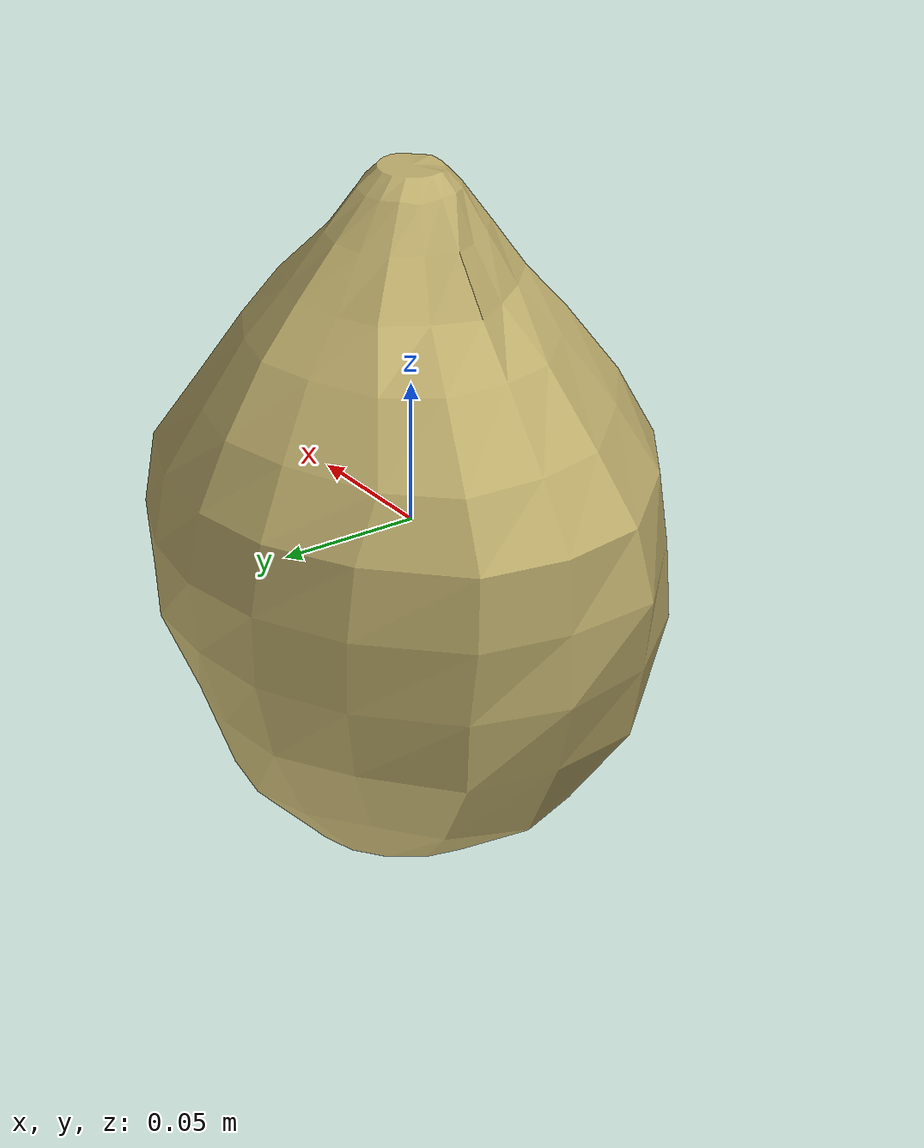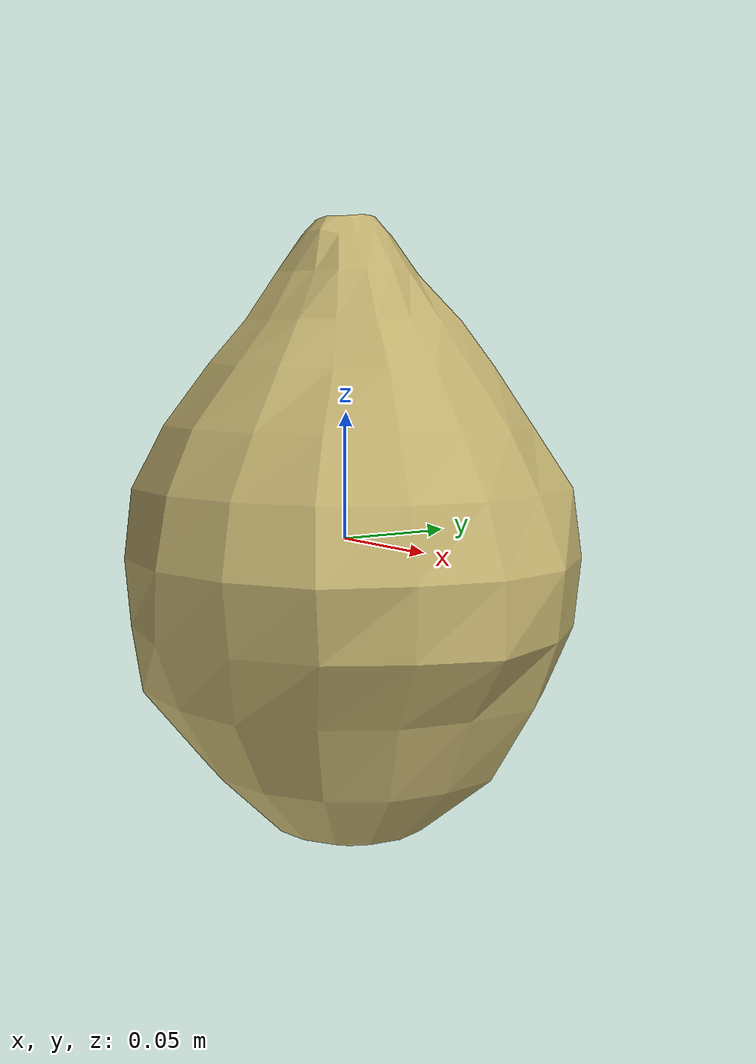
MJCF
<mujoco model="Lettuce_23">
  <compiler autolimits="true" boundmass="0.01" angle="radian"/>
  <default>
    <default class="/">
      <default class="__VISUAL_MJT__">
        <geom contype="0" conaffinity="0" group="0"/>
      </default>
      <default class="__STRUCTURAL_MJT__">
        <geom contype="8" conaffinity="15" group="4" friction="0.90000000000000002 0.90000000000000002 0.001" solref="0.025000000000000001 1" solimp="0.998 0.998 0.001"/>
      </default>
      <default class="__DYNAMIC_MJT__">
        <geom contype="1" conaffinity="15" group="4" friction="0.90000000000000002 0.90000000000000002 0.001" solref="0.025000000000000001 1" solimp="0.998 0.998 0.001"/>
      </default>
    </default>
  </default>
  <asset>
    <texture name="Lettuce3_Mat" type="2d" file="Lettuce3_AlbedoTransparency.png"/>
    <material name="material_Lettuce3_Mat" class="/" texture="Lettuce3_Mat" specular="0.5" shininess="0.5" rgba="1 0.95246359999999997 0.62735850000000004 1"/>
    <mesh name="Lettuce_23_lettuce_c3" class="/" file="Lettuce_23_lettuce_c3/Lettuce_23_lettuce_c3.obj" scale="1 1 1"/>
  </asset>
  <worldbody>
    <body name="Lettuce_23">
      <joint name="Lettuce_23_free" class="/" type="free" pos="0 0 0" axis="0 0 1" stiffness="0" range="0 0" armature="0" damping="0.10000000000000001" frictionloss="0"/>
      <body name="Lettuce_23_lettuce_c3" pos="0.0016999999999999999 -0.0038300000000000001 -0.0021099999999999999" quat="1 0 0 0">
        <geom name="Lettuce_23_lettuce_c3" class="__VISUAL_MJT__" type="mesh" material="material_Lettuce3_Mat" shellinertia="true" mesh="Lettuce_23_lettuce_c3"/>
        <geom name="Lettuce_23_PrimitiveCollider_0" class="__DYNAMIC_MJT__" type="capsule" size="0.092123210430145264 0.014759264886379242" rgba="0 1 0 1" pos="0.0016994301695376635 0.0038253450766205788 -0.016073644161224365" quat="0.99999999999891198 1.4751396607739272e-06 0 0"/>
        <geom name="Lettuce_23_PrimitiveCollider_1" class="__DYNAMIC_MJT__" type="capsule" size="0.042618006467819214 0.0058381818234920502" rgba="0 1 0 1" pos="0.0045286817476153374 0.0044832099229097366 0.078722983598709106" quat="0.99999999999891198 1.4751396607739272e-06 0 0"/>
      </body>
    </body>
  </worldbody>
</mujoco>
